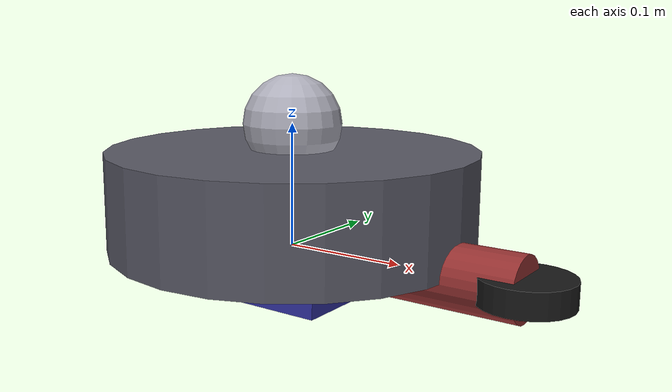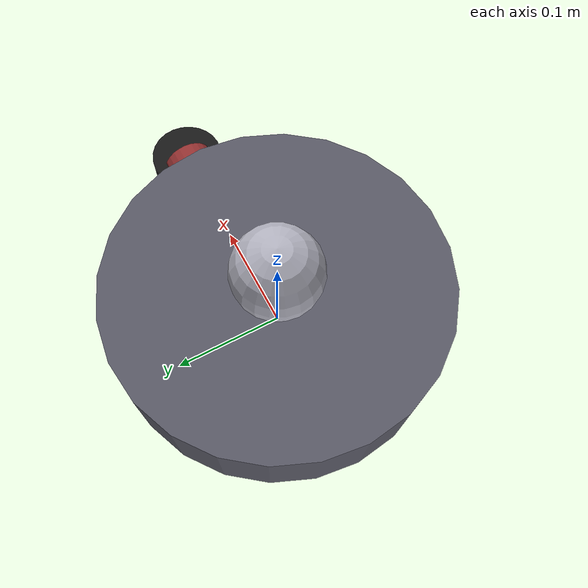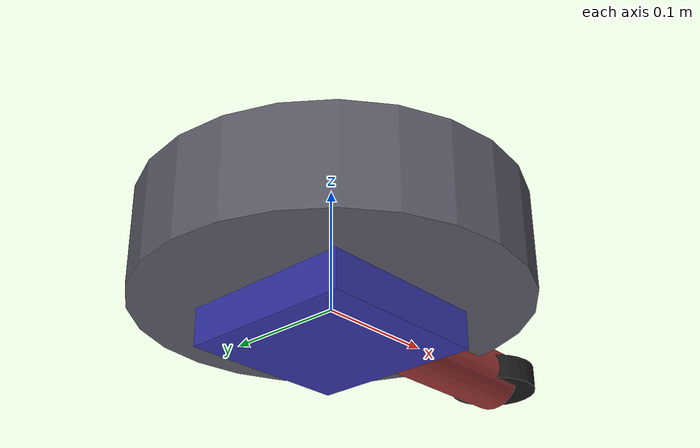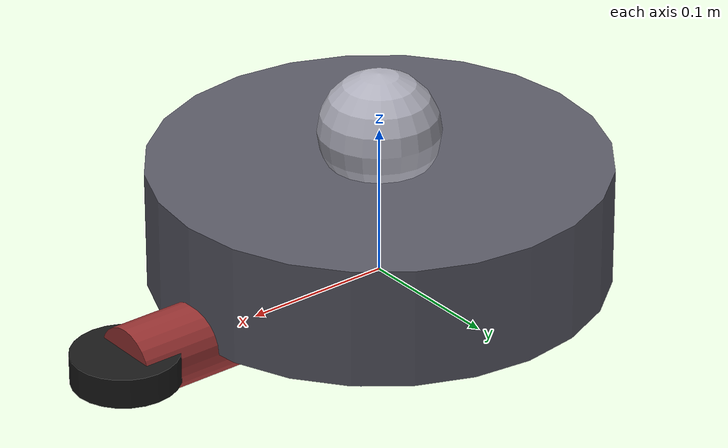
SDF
<?xml version="1.0"?>
<sdf version="1.6">
  <model name="pan_tilt_unit">

    <!-- 底座：矮圆柱 + 小球（固定）                    -->
    <link name="base_link">
      <pose>0 0 0.04 0 0 0</pose>
      <inertial>
        <mass>1.0</mass>
        <inertia>
          <ixx>0.01</ixx><ixy>0</ixy><ixz>0</ixz>
          <iyy>0.01</iyy><iyz>0</iyz>
          <izz>0.01</izz>
        </inertia>
      </inertial>

      <!-- 矮圆柱底座 -->
      <visual name="base_cylinder">
        <pose>0 0 0 0 0 0</pose>
        <geometry>
          <cylinder><radius>0.15</radius><length>0.08</length></cylinder>
        </geometry>
        <material>
          <ambient>0.25 0.25 0.30 1</ambient>
          <diffuse>0.35 0.35 0.40 1</diffuse>
        </material>
      </visual>
      <collision name="base_collision">
        <geometry>
          <cylinder><radius>0.15</radius><length>0.08</length></cylinder>
        </geometry>
      </collision>

      <!-- 底座顶部小球（连接件） -->
      <visual name="base_ball">
        <pose>0 0 0.06 0 0 0</pose>
        <geometry>
          <sphere><radius>0.04</radius></sphere>
        </geometry>
        <material>
          <ambient>0.6 0.6 0.65 1</ambient>
          <diffuse>0.7 0.7 0.75 1</diffuse>
        </material>
      </visual>
    </link>

    <!-- 一级平台（扁长方体）+ 半圆连接件              -->
    <!-- 绕 Z 轴水平旋转                              -->
    <joint name="pan_joint" type="revolute">
      <parent>base_link</parent>
      <child>pan_link</child>
      <pose>0 0 0.10 0 0 0</pose>
      <axis>
        <xyz>0 0 1</xyz>
        <limit>
          <lower>-3.14</lower>
          <upper>3.14</upper>
          <effort>5</effort>
          <velocity>3</velocity>
        </limit>
        <dynamics>
          <damping>0.3</damping>
          <friction>0.1</friction>
        </dynamics>
      </axis>
    </joint>

    <link name="pan_link">
      <inertial>
        <mass>0.3</mass>
        <inertia>
          <ixx>0.001</ixx><ixy>0</ixy><ixz>0</ixz>
          <iyy>0.001</iyy><iyz>0</iyz>
          <izz>0.001</izz>
        </inertia>
      </inertial>

      <!-- 扁长方体平台 -->
      <visual name="pan_platform">
        <pose>0 0 -0.015 0 0 0</pose>
        <geometry>
          <box><size>0.14 0.14 0.03</size></box>
        </geometry>
        <material>
          <ambient>0.15 0.15 0.55 1</ambient>
          <diffuse>0.20 0.20 0.65 1</diffuse>
        </material>
      </visual>

      <!-- 平台上方的半球连接件 -->
      <visual name="pan_hemisphere">
        <pose>0 0 0.005 0 0 0</pose>
        <geometry>
          <sphere><radius>0.035</radius></sphere>
        </geometry>
        <material>
          <ambient>0.6 0.6 0.65 1</ambient>
          <diffuse>0.7 0.7 0.75 1</diffuse>
        </material>
      </visual>
    </link>

    <!-- 二级：长圆柱（可上下转动）                    -->
    <!-- 绕 Y 轴俯仰                                  -->
    <joint name="tilt_joint" type="revolute">
      <parent>pan_link</parent>
      <child>tilt_link</child>
      <pose>0 0 0.02 0 0 0</pose>
      <axis>
        <xyz>0 1 0</xyz>
        <limit>
          <lower>-1.05</lower>    <!-- -60 deg -->
          <upper>1.05</upper>     <!-- +60 deg -->
          <effort>5</effort>
          <velocity>3</velocity>
        </limit>
        <dynamics>
          <damping>0.3</damping>
          <friction>0.1</friction>
        </dynamics>
      </axis>
    </joint>

    <link name="tilt_link">
      <inertial>
        <mass>0.15</mass>
        <inertia>
          <ixx>0.0005</ixx><ixy>0</ixy><ixz>0</ixz>
          <iyy>0.0001</iyy><iyz>0</iyz>
          <izz>0.0005</izz>
        </inertia>
      </inertial>

      <!-- 长圆柱筒（水平方向，镜头朝前） -->
      <visual name="tilt_barrel">
        <pose>0.10 0 0 0 1.57 0</pose>
        <geometry>
          <cylinder><radius>0.025</radius><length>0.20</length></cylinder>
        </geometry>
        <material>
          <ambient>0.50 0.15 0.15 1</ambient>
          <diffuse>0.60 0.20 0.20 1</diffuse>
        </material>
      </visual>

      <!-- 镜头前端（稍大的圆圈） -->
      <visual name="tilt_lens">
        <pose>0.20 0 0 0 0 0</pose>
        <geometry>
          <cylinder><radius>0.035</radius><length>0.02</length></cylinder>
        </geometry>
        <material>
          <ambient>0.15 0.15 0.15 1</ambient>
          <diffuse>0.10 0.10 0.10 1</diffuse>
        </material>
      </visual>
    </link>

    <!-- PID 位置控制器                                -->
    <!-- 键盘通过 ign topic -p 发送 JointCmd           -->
    <plugin name="joint_controllers"
            filename="/usr/lib/x86_64-linux-gnu/gazebo-11/plugins/libJointControlPlugin.so">
      <controller type="position">
        <joint>pan_joint</joint>
        <target>0.0</target>
        <pid_gains>30 0 3</pid_gains>
      </controller>
      <controller type="position">
        <joint>tilt_joint</joint>
        <target>0.0</target>
        <pid_gains>30 0 3</pid_gains>
      </controller>
    </plugin>

  </model>
</sdf>
